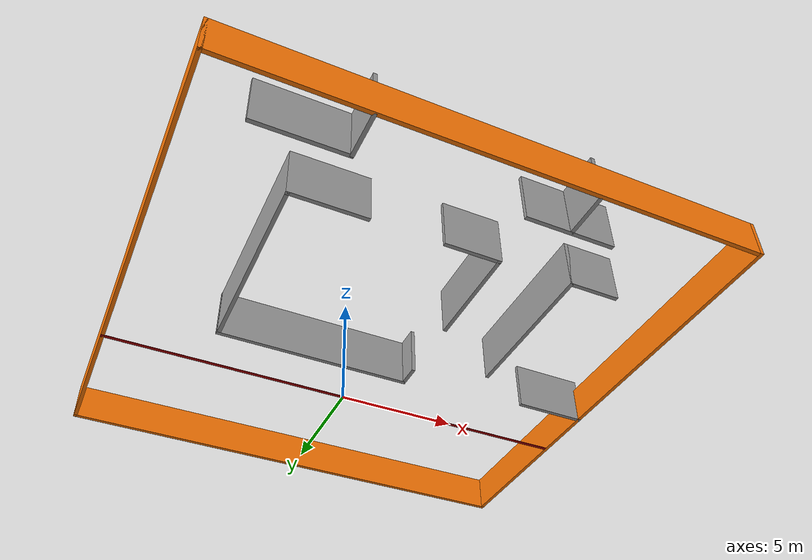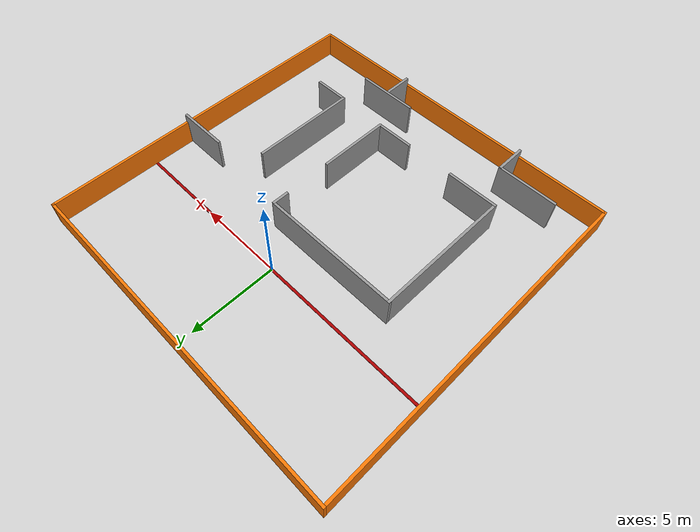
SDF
<?xml version='1.0'?>
<sdf version='1.7'>
  <model name='SAFMC_WALL'>
    <pose>0.0015 -3.925 0 0 -0 0</pose>
    <link name='Wall_0'>
      <collision name='Wall_0_Collision'>
        <geometry>
          <box>
            <size>20.15 0.15 1.5</size>
          </box>
        </geometry>
        <pose>0 0 0.75 0 -0 0</pose>
      </collision>
      <visual name='Wall_0_Visual'>
        <pose>0 0 0.75 0 -0 0</pose>
        <geometry>
          <box>
            <size>20.15 0.15 1.5</size>
          </box>
        </geometry>
        <material>
          <script>
            <uri>file://media/materials/scripts/gazebo.material</uri>
            <name>Gazebo/Grey</name>
          </script>
          <ambient>0.996078 0.47451 0.0196078 1</ambient>
        </material>
        <meta>
          <layer>0</layer>
        </meta>
      </visual>
      <pose>-0.0015 9.925 0 0 -0 0</pose>
    </link>
    <link name='Wall_11'>
      <collision name='Wall_11_Collision'>
        <geometry>
          <box>
            <size>3 0.15 2</size>
          </box>
        </geometry>
        <pose>0 0 1 0 -0 0</pose>
      </collision>
      <visual name='Wall_11_Visual'>
        <pose>0 0 1 0 -0 0</pose>
        <geometry>
          <box>
            <size>3 0.15 2</size>
          </box>
        </geometry>
        <material>
          <script>
            <uri>file://media/materials/scripts/gazebo.material</uri>
            <name>Gazebo/Grey</name>
          </script>
          <ambient>0 0 0 1</ambient>
        </material>
        <meta>
          <layer>0</layer>
        </meta>
      </visual>
      <pose>8.5765 1.34761 0 0 -0 3.14159</pose>
    </link>
    <link name='Wall_13'>
      <collision name='Wall_13_Collision'>
        <geometry>
          <box>
            <size>6.25 0.15 2</size>
          </box>
        </geometry>
        <pose>0 0 1 0 -0 0</pose>
      </collision>
      <visual name='Wall_13_Visual'>
        <pose>0 0 1 0 -0 0</pose>
        <geometry>
          <box>
            <size>6.25 0.15 2</size>
          </box>
        </geometry>
        <material>
          <script>
            <uri>file://media/materials/scripts/gazebo.material</uri>
            <name>Gazebo/Grey</name>
          </script>
          <ambient>0 0 0 1</ambient>
        </material>
        <meta>
          <layer>0</layer>
        </meta>
      </visual>
      <pose>4.837 -2.89853 0 0 -0 -1.5708</pose>
    </link>
    <link name='Wall_14'>
      <collision name='Wall_14_Collision'>
        <geometry>
          <box>
            <size>2 0.15 2</size>
          </box>
        </geometry>
        <pose>0 0 1 0 -0 0</pose>
      </collision>
      <visual name='Wall_14_Visual'>
        <pose>0 0 1 0 -0 0</pose>
        <geometry>
          <box>
            <size>2 0.15 2</size>
          </box>
        </geometry>
        <material>
          <script>
            <uri>file://media/materials/scripts/gazebo.material</uri>
            <name>Gazebo/Grey</name>
          </script>
          <ambient>0 0 0 1</ambient>
        </material>
        <meta>
          <layer>0</layer>
        </meta>
      </visual>
      <pose>5.80647 -5.94853 0 0 -0 0</pose>
    </link>
    <link name='Wall_16'>
      <collision name='Wall_16_Collision'>
        <geometry>
          <box>
            <size>1.80681 0.15 2</size>
          </box>
        </geometry>
        <pose>0 0 1 0 -0 0</pose>
      </collision>
      <visual name='Wall_16_Visual'>
        <pose>0 0 1 0 -0 0</pose>
        <geometry>
          <box>
            <size>1.80681 0.15 2</size>
          </box>
        </geometry>
        <material>
          <script>
            <uri>file://media/materials/scripts/gazebo.material</uri>
            <name>Gazebo/Grey</name>
          </script>
          <ambient>0 0 0 1</ambient>
        </material>
        <meta>
          <layer>0</layer>
        </meta>
      </visual>
      <pose>-4.6625 -9.03559 0 0 -0 1.5708</pose>
    </link>
    <link name='Wall_17'>
      <collision name='Wall_17_Collision'>
        <geometry>
          <box>
            <size>3.5 0.15 2</size>
          </box>
        </geometry>
        <pose>0 0 1 0 -0 0</pose>
      </collision>
      <visual name='Wall_17_Visual'>
        <pose>0 0 1 0 -0 0</pose>
        <geometry>
          <box>
            <size>3.5 0.15 2</size>
          </box>
        </geometry>
        <material>
          <script>
            <uri>file://media/materials/scripts/gazebo.material</uri>
            <name>Gazebo/Grey</name>
          </script>
          <ambient>0 0 0 1</ambient>
        </material>
        <meta>
          <layer>0</layer>
        </meta>
      </visual>
      <pose>-6.3375 -8.15747 0 0 -0 3.14159</pose>
    </link>
    <link name='Wall_19'>
      <collision name='Wall_19_Collision'>
        <geometry>
          <box>
            <size>3.5 0.15 2</size>
          </box>
        </geometry>
        <pose>0 0 1 0 -0 0</pose>
      </collision>
      <visual name='Wall_19_Visual'>
        <pose>0 0 1 0 -0 0</pose>
        <geometry>
          <box>
            <size>3.5 0.15 2</size>
          </box>
        </geometry>
        <material>
          <script>
            <uri>file://media/materials/scripts/gazebo.material</uri>
            <name>Gazebo/Grey</name>
          </script>
          <ambient>0 0 0 1</ambient>
        </material>
        <meta>
          <layer>0</layer>
        </meta>
      </visual>
      <pose>3.35655 -8.11703 0 0 -0 0</pose>
    </link>
    <link name='Wall_2'>
      <collision name='Wall_2_Collision'>
        <geometry>
          <box>
            <size>20 0.15 1.5</size>
          </box>
        </geometry>
        <pose>0 0 0.75 0 -0 0</pose>
      </collision>
      <visual name='Wall_2_Visual'>
        <pose>0 0 0.75 0 -0 0</pose>
        <geometry>
          <box>
            <size>20 0.15 1.5</size>
          </box>
        </geometry>
        <material>
          <script>
            <uri>file://media/materials/scripts/gazebo.material</uri>
            <name>Gazebo/Grey</name>
          </script>
          <ambient>0.996078 0.47451 0.0196078 1</ambient>
        </material>
        <meta>
          <layer>0</layer>
        </meta>
      </visual>
      <pose>-10.0015 0 0 0 -0 -1.5708</pose>
    </link>
    <link name='Wall_21'>
      <collision name='Wall_21_Collision'>
        <geometry>
          <box>
            <size>8 0.15 2</size>
          </box>
        </geometry>
        <pose>0 0 1 0 -0 0</pose>
      </collision>
      <visual name='Wall_21_Visual'>
        <pose>0 0 1 0 -0 0</pose>
        <geometry>
          <box>
            <size>8 0.15 2</size>
          </box>
        </geometry>
        <material>
          <script>
            <uri>file://media/materials/scripts/gazebo.material</uri>
            <name>Gazebo/Grey</name>
          </script>
          <ambient>0 0 0 1</ambient>
        </material>
        <meta>
          <layer>0</layer>
        </meta>
      </visual>
      <pose>-2.06232 1.94815 0 0 -0 0</pose>
    </link>
    <link name='Wall_23'>
      <collision name='Wall_23_Collision'>
        <geometry>
          <box>
            <size>8 0.15 2</size>
          </box>
        </geometry>
        <pose>0 0 1 0 -0 0</pose>
      </collision>
      <visual name='Wall_23_Visual'>
        <pose>0 0 1 0 -0 0</pose>
        <geometry>
          <box>
            <size>8 0.15 2</size>
          </box>
        </geometry>
        <material>
          <script>
            <uri>file://media/materials/scripts/gazebo.material</uri>
            <name>Gazebo/Grey</name>
          </script>
          <ambient>0 0 0 1</ambient>
        </material>
        <meta>
          <layer>0</layer>
        </meta>
      </visual>
      <pose>-5.97626 -1.97693 0 0 -0 -1.57086</pose>
    </link>
    <link name='Wall_28'>
      <collision name='Wall_28_Collision'>
        <geometry>
          <box>
            <size>1 0.15 2</size>
          </box>
        </geometry>
        <pose>0 0 1 0 -0 0</pose>
      </collision>
      <visual name='Wall_28_Visual'>
        <pose>0 0 1 0 -0 0</pose>
        <geometry>
          <box>
            <size>1 0.15 2</size>
          </box>
        </geometry>
        <material>
          <script>
            <uri>file://media/materials/scripts/gazebo.material</uri>
            <name>Gazebo/Grey</name>
          </script>
          <ambient>0 0 0 1</ambient>
        </material>
        <meta>
          <layer>0</layer>
        </meta>
      </visual>
      <pose>1.8884 1.50443 0 0 -0 -1.5708</pose>
    </link>
    <link name='Wall_31'>
      <collision name='Wall_31_Collision'>
        <geometry>
          <box>
            <size>4.25 0.15 2</size>
          </box>
        </geometry>
        <pose>0 0 1 0 -0 0</pose>
      </collision>
      <visual name='Wall_31_Visual'>
        <pose>0 0 1 0 -0 0</pose>
        <geometry>
          <box>
            <size>4.25 0.15 2</size>
          </box>
        </geometry>
        <material>
          <script>
            <uri>file://media/materials/scripts/gazebo.material</uri>
            <name>Gazebo/Grey</name>
          </script>
          <ambient>0 0 0 1</ambient>
        </material>
        <meta>
          <layer>0</layer>
        </meta>
      </visual>
      <pose>1.8905 -3.85 0 0 -0 1.5708</pose>
    </link>
    <link name='Wall_34'>
      <collision name='Wall_34_Collision'>
        <geometry>
          <box>
            <size>20 0.15 0.01</size>
          </box>
        </geometry>
        <pose>0 0 0.005 0 -0 0</pose>
      </collision>
      <visual name='Wall_34_Visual'>
        <pose>0 0 0.005 0 -0 0</pose>
        <geometry>
          <box>
            <size>20 0.15 0.01</size>
          </box>
        </geometry>
        <material>
          <script>
            <uri>file://media/materials/scripts/gazebo.material</uri>
            <name>Gazebo/Grey</name>
          </script>
          <ambient>0.666667 0 0 1</ambient>
        </material>
        <meta>
          <layer>0</layer>
        </meta>
      </visual>
      <pose>-0.0665 3.925 0 0 -0 0</pose>
    </link>
    <link name='Wall_40'>
      <collision name='Wall_40_Collision'>
        <geometry>
          <box>
            <size>3 0.15 2</size>
          </box>
        </geometry>
        <pose>0 0 1 0 -0 0</pose>
      </collision>
      <visual name='Wall_40_Visual'>
        <pose>0 0 1 0 -0 0</pose>
        <geometry>
          <box>
            <size>3 0.15 2</size>
          </box>
        </geometry>
        <material>
          <script>
            <uri>file://media/materials/scripts/gazebo.material</uri>
            <name>Gazebo/Grey</name>
          </script>
          <ambient>0 0 0 1</ambient>
        </material>
        <meta>
          <layer>0</layer>
        </meta>
      </visual>
      <pose>-4.5515 -5.902 0 0 -0 0</pose>
    </link>
    <link name='Wall_42'>
      <collision name='Wall_42_Collision'>
        <geometry>
          <box>
            <size>2.25 0.15 2</size>
          </box>
        </geometry>
        <pose>0 0 1 0 -0 0</pose>
      </collision>
      <visual name='Wall_42_Visual'>
        <pose>0 0 1 0 -0 0</pose>
        <geometry>
          <box>
            <size>2.25 0.15 2</size>
          </box>
        </geometry>
        <material>
          <script>
            <uri>file://media/materials/scripts/gazebo.material</uri>
            <name>Gazebo/Grey</name>
          </script>
          <ambient>0 0 0 1</ambient>
        </material>
        <meta>
          <layer>0</layer>
        </meta>
      </visual>
      <pose>0.8405 -5.9 0 0 -0 3.14159</pose>
    </link>
    <link name='Wall_47'>
      <collision name='Wall_47_Collision'>
        <geometry>
          <box>
            <size>1.75 0.15 2</size>
          </box>
        </geometry>
        <pose>0 0 1 0 -0 0</pose>
      </collision>
      <visual name='Wall_47_Visual'>
        <pose>0 0 1 0 -0 0</pose>
        <geometry>
          <box>
            <size>1.75 0.15 2</size>
          </box>
        </geometry>
        <material>
          <script>
            <uri>file://media/materials/scripts/gazebo.material</uri>
            <name>Gazebo/Grey</name>
          </script>
          <ambient>0 0 0 1</ambient>
        </material>
        <meta>
          <layer>0</layer>
        </meta>
      </visual>
      <pose>3.3985 -8.995 0 0 -0 -1.5708</pose>
    </link>
    <link name='Wall_5'>
      <collision name='Wall_5_Collision'>
        <geometry>
          <box>
            <size>20 0.15 1.5</size>
          </box>
        </geometry>
        <pose>0 0 0.75 0 -0 0</pose>
      </collision>
      <visual name='Wall_5_Visual'>
        <pose>0 0 0.75 0 -0 0</pose>
        <geometry>
          <box>
            <size>20 0.15 1.5</size>
          </box>
        </geometry>
        <material>
          <script>
            <uri>file://media/materials/scripts/gazebo.material</uri>
            <name>Gazebo/Grey</name>
          </script>
          <ambient>0.996078 0.47451 0.0196078 1</ambient>
        </material>
        <meta>
          <layer>0</layer>
        </meta>
      </visual>
      <pose>-0.0765 -9.925 0 0 -0 0</pose>
    </link>
    <link name='Wall_7'>
      <collision name='Wall_7_Collision'>
        <geometry>
          <box>
            <size>20 0.15 1.5</size>
          </box>
        </geometry>
        <pose>0 0 0.75 0 -0 0</pose>
      </collision>
      <visual name='Wall_7_Visual'>
        <pose>0 0 0.75 0 -0 0</pose>
        <geometry>
          <box>
            <size>20 0.15 1.5</size>
          </box>
        </geometry>
        <material>
          <script>
            <uri>file://media/materials/scripts/gazebo.material</uri>
            <name>Gazebo/Grey</name>
          </script>
          <ambient>0.996078 0.47451 0.0196078 1</ambient>
        </material>
        <meta>
          <layer>0</layer>
        </meta>
      </visual>
      <pose>9.9985 0 0 0 -0 -1.5708</pose>
    </link>
    <static>1</static>
  </model>
</sdf>
